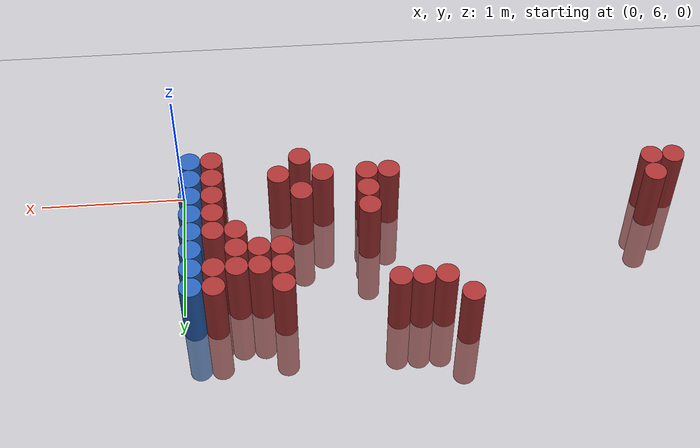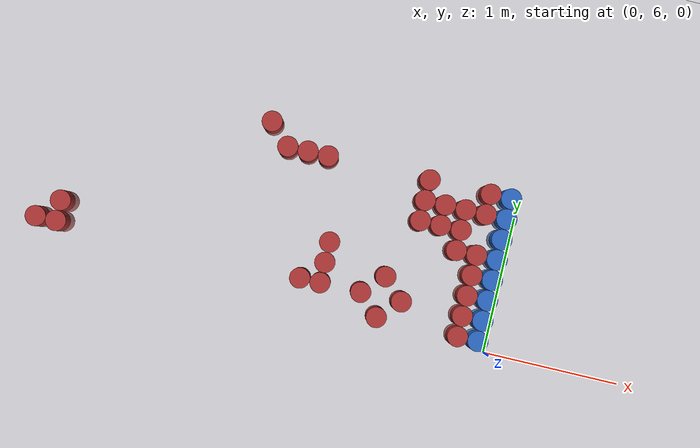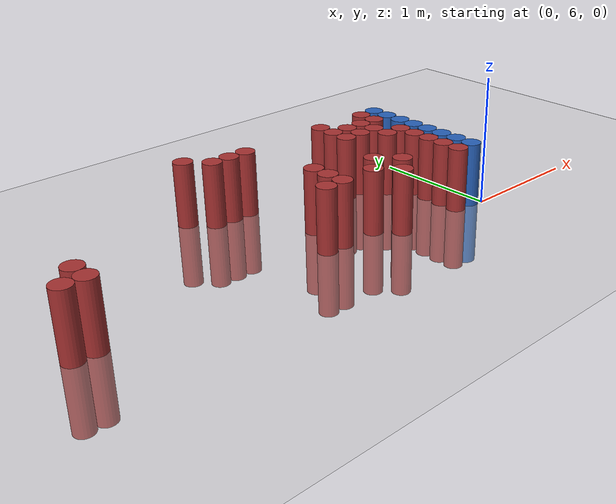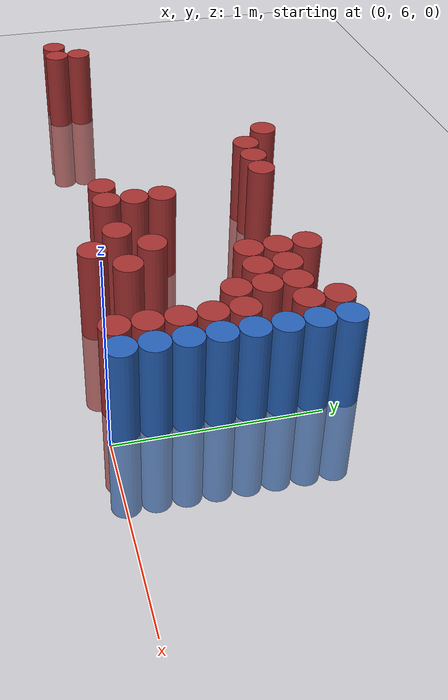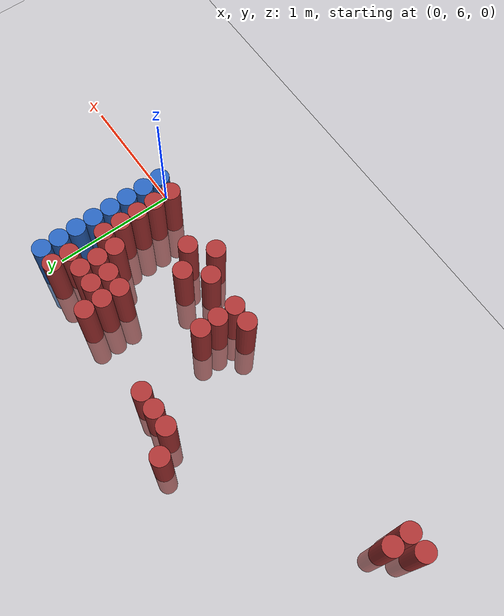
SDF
<sdf version="1.6">
 <world name="default">
  <model name="ground_plane">
   <static>1</static>
   <link name="link">
    <collision name="collision">
     <geometry><plane><normal>0 0 1</normal><size>100 100</size></plane></geometry>
     <surface><friction><ode><mu>100</mu><mu2>50</mu2></ode></friction></surface>
    </collision>
    <visual name="visual">
     <cast_shadows>0</cast_shadows>
     <geometry><plane><normal>0 0 1</normal><size>100 100</size></plane></geometry>
     <material>
      <script><uri>file://media/materials/scripts/gazebo.material</uri><name>Gazebo/Grey</name></script>
     </material>
    </visual>
   </link>
  </model>
  <model name="unit_cylinder_196">
   <static>1</static>
   <pose>-3.375000 6.225000 0.000000 0.000000 0.000000 0.000000</pose>
   <link name="link">
    <inertial>
     <mass>1</mass>
     <inertia><ixx>0.145833</ixx><ixy>0</ixy><ixz>0</ixz><iyy>0.145833</iyy><iyz>0</iyz><izz>0.125</izz></inertia>
    </inertial>
    <collision name="collision">
     <geometry><cylinder><radius>0.075000</radius><length>1</length></cylinder></geometry>
    </collision>
    <visual name="visual">
     <geometry><cylinder><radius>0.075000</radius><length>1</length></cylinder></geometry>
     <material>
      <ambient>0.648000 0.192000 0.192000 1</ambient>
      <diffuse>0.648000 0.192000 0.192000 1</diffuse>
     </material>
     <material>
      <script><name>Gazebo/Grey</name><uri>file://media/materials/scripts/gazebo.material</uri></script>
     </material>
    </visual>
    <sensor name="sensor_contact" type="contact"><contact><collision>collision</collision></contact></sensor>
   </link>
   <plugin filename="gz-sim-touchplugin-system" name="gz::sim::systems::TouchPlugin">
    <target>robot</target>
    <namespace>robot</namespace>
    <time>0.001</time>
    <enabled>true</enabled>
   </plugin>
  </model>
  <model name="unit_cylinder_201">
   <static>1</static>
   <pose>-3.225000 6.225000 0.000000 0.000000 0.000000 0.000000</pose>
   <link name="link">
    <inertial>
     <mass>1</mass>
     <inertia><ixx>0.145833</ixx><ixy>0</ixy><ixz>0</ixz><iyy>0.145833</iyy><iyz>0</iyz><izz>0.125</izz></inertia>
    </inertial>
    <collision name="collision">
     <geometry><cylinder><radius>0.075000</radius><length>1</length></cylinder></geometry>
    </collision>
    <visual name="visual">
     <geometry><cylinder><radius>0.075000</radius><length>1</length></cylinder></geometry>
     <material>
      <ambient>0.648000 0.192000 0.192000 1</ambient>
      <diffuse>0.648000 0.192000 0.192000 1</diffuse>
     </material>
     <material>
      <script><name>Gazebo/Grey</name><uri>file://media/materials/scripts/gazebo.material</uri></script>
     </material>
    </visual>
    <sensor name="sensor_contact" type="contact"><contact><collision>collision</collision></contact></sensor>
   </link>
   <plugin filename="gz-sim-touchplugin-system" name="gz::sim::systems::TouchPlugin">
    <target>robot</target>
    <namespace>robot</namespace>
    <time>0.001</time>
    <enabled>true</enabled>
   </plugin>
  </model>
  <model name="unit_cylinder_202">
   <static>1</static>
   <pose>-3.225000 6.375000 0.000000 0.000000 0.000000 0.000000</pose>
   <link name="link">
    <inertial>
     <mass>1</mass>
     <inertia><ixx>0.145833</ixx><ixy>0</ixy><ixz>0</ixz><iyy>0.145833</iyy><iyz>0</iyz><izz>0.125</izz></inertia>
    </inertial>
    <collision name="collision">
     <geometry><cylinder><radius>0.075000</radius><length>1</length></cylinder></geometry>
    </collision>
    <visual name="visual">
     <geometry><cylinder><radius>0.075000</radius><length>1</length></cylinder></geometry>
     <material>
      <ambient>0.648000 0.192000 0.192000 1</ambient>
      <diffuse>0.648000 0.192000 0.192000 1</diffuse>
     </material>
     <material>
      <script><name>Gazebo/Grey</name><uri>file://media/materials/scripts/gazebo.material</uri></script>
     </material>
    </visual>
    <sensor name="sensor_contact" type="contact"><contact><collision>collision</collision></contact></sensor>
   </link>
   <plugin filename="gz-sim-touchplugin-system" name="gz::sim::systems::TouchPlugin">
    <target>robot</target>
    <namespace>robot</namespace>
    <time>0.001</time>
    <enabled>true</enabled>
   </plugin>
  </model>
  <model name="unit_cylinder_229">
   <static>1</static>
   <pose>-1.875000 7.275000 0.000000 0.000000 0.000000 0.000000</pose>
   <link name="link">
    <inertial>
     <mass>1</mass>
     <inertia><ixx>0.145833</ixx><ixy>0</ixy><ixz>0</ixz><iyy>0.145833</iyy><iyz>0</iyz><izz>0.125</izz></inertia>
    </inertial>
    <collision name="collision">
     <geometry><cylinder><radius>0.075000</radius><length>1</length></cylinder></geometry>
    </collision>
    <visual name="visual">
     <geometry><cylinder><radius>0.075000</radius><length>1</length></cylinder></geometry>
     <material>
      <ambient>0.648000 0.192000 0.192000 1</ambient>
      <diffuse>0.648000 0.192000 0.192000 1</diffuse>
     </material>
     <material>
      <script><name>Gazebo/Grey</name><uri>file://media/materials/scripts/gazebo.material</uri></script>
     </material>
    </visual>
    <sensor name="sensor_contact" type="contact"><contact><collision>collision</collision></contact></sensor>
   </link>
   <plugin filename="gz-sim-touchplugin-system" name="gz::sim::systems::TouchPlugin">
    <target>robot</target>
    <namespace>robot</namespace>
    <time>0.001</time>
    <enabled>true</enabled>
   </plugin>
  </model>
  <model name="unit_cylinder_231">
   <static>1</static>
   <pose>-1.725000 7.125000 0.000000 0.000000 0.000000 0.000000</pose>
   <link name="link">
    <inertial>
     <mass>1</mass>
     <inertia><ixx>0.145833</ixx><ixy>0</ixy><ixz>0</ixz><iyy>0.145833</iyy><iyz>0</iyz><izz>0.125</izz></inertia>
    </inertial>
    <collision name="collision">
     <geometry><cylinder><radius>0.075000</radius><length>1</length></cylinder></geometry>
    </collision>
    <visual name="visual">
     <geometry><cylinder><radius>0.075000</radius><length>1</length></cylinder></geometry>
     <material>
      <ambient>0.648000 0.192000 0.192000 1</ambient>
      <diffuse>0.648000 0.192000 0.192000 1</diffuse>
     </material>
     <material>
      <script><name>Gazebo/Grey</name><uri>file://media/materials/scripts/gazebo.material</uri></script>
     </material>
    </visual>
    <sensor name="sensor_contact" type="contact"><contact><collision>collision</collision></contact></sensor>
   </link>
   <plugin filename="gz-sim-touchplugin-system" name="gz::sim::systems::TouchPlugin">
    <target>robot</target>
    <namespace>robot</namespace>
    <time>0.001</time>
    <enabled>true</enabled>
   </plugin>
  </model>
  <model name="unit_cylinder_236">
   <static>1</static>
   <pose>-1.575000 7.125000 0.000000 0.000000 0.000000 0.000000</pose>
   <link name="link">
    <inertial>
     <mass>1</mass>
     <inertia><ixx>0.145833</ixx><ixy>0</ixy><ixz>0</ixz><iyy>0.145833</iyy><iyz>0</iyz><izz>0.125</izz></inertia>
    </inertial>
    <collision name="collision">
     <geometry><cylinder><radius>0.075000</radius><length>1</length></cylinder></geometry>
    </collision>
    <visual name="visual">
     <geometry><cylinder><radius>0.075000</radius><length>1</length></cylinder></geometry>
     <material>
      <ambient>0.648000 0.192000 0.192000 1</ambient>
      <diffuse>0.648000 0.192000 0.192000 1</diffuse>
     </material>
     <material>
      <script><name>Gazebo/Grey</name><uri>file://media/materials/scripts/gazebo.material</uri></script>
     </material>
    </visual>
    <sensor name="sensor_contact" type="contact"><contact><collision>collision</collision></contact></sensor>
   </link>
   <plugin filename="gz-sim-touchplugin-system" name="gz::sim::systems::TouchPlugin">
    <target>robot</target>
    <namespace>robot</namespace>
    <time>0.001</time>
    <enabled>true</enabled>
   </plugin>
  </model>
  <model name="unit_cylinder_246">
   <static>1</static>
   <pose>-1.425000 6.225000 0.000000 0.000000 0.000000 0.000000</pose>
   <link name="link">
    <inertial>
     <mass>1</mass>
     <inertia><ixx>0.145833</ixx><ixy>0</ixy><ixz>0</ixz><iyy>0.145833</iyy><iyz>0</iyz><izz>0.125</izz></inertia>
    </inertial>
    <collision name="collision">
     <geometry><cylinder><radius>0.075000</radius><length>1</length></cylinder></geometry>
    </collision>
    <visual name="visual">
     <geometry><cylinder><radius>0.075000</radius><length>1</length></cylinder></geometry>
     <material>
      <ambient>0.648000 0.192000 0.192000 1</ambient>
      <diffuse>0.648000 0.192000 0.192000 1</diffuse>
     </material>
     <material>
      <script><name>Gazebo/Grey</name><uri>file://media/materials/scripts/gazebo.material</uri></script>
     </material>
    </visual>
    <sensor name="sensor_contact" type="contact"><contact><collision>collision</collision></contact></sensor>
   </link>
   <plugin filename="gz-sim-touchplugin-system" name="gz::sim::systems::TouchPlugin">
    <target>robot</target>
    <namespace>robot</namespace>
    <time>0.001</time>
    <enabled>true</enabled>
   </plugin>
  </model>
  <model name="unit_cylinder_247">
   <static>1</static>
   <pose>-1.425000 7.125000 0.000000 0.000000 0.000000 0.000000</pose>
   <link name="link">
    <inertial>
     <mass>1</mass>
     <inertia><ixx>0.145833</ixx><ixy>0</ixy><ixz>0</ixz><iyy>0.145833</iyy><iyz>0</iyz><izz>0.125</izz></inertia>
    </inertial>
    <collision name="collision">
     <geometry><cylinder><radius>0.075000</radius><length>1</length></cylinder></geometry>
    </collision>
    <visual name="visual">
     <geometry><cylinder><radius>0.075000</radius><length>1</length></cylinder></geometry>
     <material>
      <ambient>0.648000 0.192000 0.192000 1</ambient>
      <diffuse>0.648000 0.192000 0.192000 1</diffuse>
     </material>
     <material>
      <script><name>Gazebo/Grey</name><uri>file://media/materials/scripts/gazebo.material</uri></script>
     </material>
    </visual>
    <sensor name="sensor_contact" type="contact"><contact><collision>collision</collision></contact></sensor>
   </link>
   <plugin filename="gz-sim-touchplugin-system" name="gz::sim::systems::TouchPlugin">
    <target>robot</target>
    <namespace>robot</namespace>
    <time>0.001</time>
    <enabled>true</enabled>
   </plugin>
  </model>
  <model name="unit_cylinder_259">
   <static>1</static>
   <pose>-1.275000 6.225000 0.000000 0.000000 0.000000 0.000000</pose>
   <link name="link">
    <inertial>
     <mass>1</mass>
     <inertia><ixx>0.145833</ixx><ixy>0</ixy><ixz>0</ixz><iyy>0.145833</iyy><iyz>0</iyz><izz>0.125</izz></inertia>
    </inertial>
    <collision name="collision">
     <geometry><cylinder><radius>0.075000</radius><length>1</length></cylinder></geometry>
    </collision>
    <visual name="visual">
     <geometry><cylinder><radius>0.075000</radius><length>1</length></cylinder></geometry>
     <material>
      <ambient>0.648000 0.192000 0.192000 1</ambient>
      <diffuse>0.648000 0.192000 0.192000 1</diffuse>
     </material>
     <material>
      <script><name>Gazebo/Grey</name><uri>file://media/materials/scripts/gazebo.material</uri></script>
     </material>
    </visual>
    <sensor name="sensor_contact" type="contact"><contact><collision>collision</collision></contact></sensor>
   </link>
   <plugin filename="gz-sim-touchplugin-system" name="gz::sim::systems::TouchPlugin">
    <target>robot</target>
    <namespace>robot</namespace>
    <time>0.001</time>
    <enabled>true</enabled>
   </plugin>
  </model>
  <model name="unit_cylinder_260">
   <static>1</static>
   <pose>-1.275000 6.375000 0.000000 0.000000 0.000000 0.000000</pose>
   <link name="link">
    <inertial>
     <mass>1</mass>
     <inertia><ixx>0.145833</ixx><ixy>0</ixy><ixz>0</ixz><iyy>0.145833</iyy><iyz>0</iyz><izz>0.125</izz></inertia>
    </inertial>
    <collision name="collision">
     <geometry><cylinder><radius>0.075000</radius><length>1</length></cylinder></geometry>
    </collision>
    <visual name="visual">
     <geometry><cylinder><radius>0.075000</radius><length>1</length></cylinder></geometry>
     <material>
      <ambient>0.648000 0.192000 0.192000 1</ambient>
      <diffuse>0.648000 0.192000 0.192000 1</diffuse>
     </material>
     <material>
      <script><name>Gazebo/Grey</name><uri>file://media/materials/scripts/gazebo.material</uri></script>
     </material>
    </visual>
    <sensor name="sensor_contact" type="contact"><contact><collision>collision</collision></contact></sensor>
   </link>
   <plugin filename="gz-sim-touchplugin-system" name="gz::sim::systems::TouchPlugin">
    <target>robot</target>
    <namespace>robot</namespace>
    <time>0.001</time>
    <enabled>true</enabled>
   </plugin>
  </model>
  <model name="unit_cylinder_261">
   <static>1</static>
   <pose>-1.275000 6.525000 0.000000 0.000000 0.000000 0.000000</pose>
   <link name="link">
    <inertial>
     <mass>1</mass>
     <inertia><ixx>0.145833</ixx><ixy>0</ixy><ixz>0</ixz><iyy>0.145833</iyy><iyz>0</iyz><izz>0.125</izz></inertia>
    </inertial>
    <collision name="collision">
     <geometry><cylinder><radius>0.075000</radius><length>1</length></cylinder></geometry>
    </collision>
    <visual name="visual">
     <geometry><cylinder><radius>0.075000</radius><length>1</length></cylinder></geometry>
     <material>
      <ambient>0.648000 0.192000 0.192000 1</ambient>
      <diffuse>0.648000 0.192000 0.192000 1</diffuse>
     </material>
     <material>
      <script><name>Gazebo/Grey</name><uri>file://media/materials/scripts/gazebo.material</uri></script>
     </material>
    </visual>
    <sensor name="sensor_contact" type="contact"><contact><collision>collision</collision></contact></sensor>
   </link>
   <plugin filename="gz-sim-touchplugin-system" name="gz::sim::systems::TouchPlugin">
    <target>robot</target>
    <namespace>robot</namespace>
    <time>0.001</time>
    <enabled>true</enabled>
   </plugin>
  </model>
  <model name="unit_cylinder_276">
   <static>1</static>
   <pose>-0.975000 6.225000 0.000000 0.000000 0.000000 0.000000</pose>
   <link name="link">
    <inertial>
     <mass>1</mass>
     <inertia><ixx>0.145833</ixx><ixy>0</ixy><ixz>0</ixz><iyy>0.145833</iyy><iyz>0</iyz><izz>0.125</izz></inertia>
    </inertial>
    <collision name="collision">
     <geometry><cylinder><radius>0.075000</radius><length>1</length></cylinder></geometry>
    </collision>
    <visual name="visual">
     <geometry><cylinder><radius>0.075000</radius><length>1</length></cylinder></geometry>
     <material>
      <ambient>0.648000 0.192000 0.192000 1</ambient>
      <diffuse>0.648000 0.192000 0.192000 1</diffuse>
     </material>
     <material>
      <script><name>Gazebo/Grey</name><uri>file://media/materials/scripts/gazebo.material</uri></script>
     </material>
    </visual>
    <sensor name="sensor_contact" type="contact"><contact><collision>collision</collision></contact></sensor>
   </link>
   <plugin filename="gz-sim-touchplugin-system" name="gz::sim::systems::TouchPlugin">
    <target>robot</target>
    <namespace>robot</namespace>
    <time>0.001</time>
    <enabled>true</enabled>
   </plugin>
  </model>
  <model name="unit_cylinder_280">
   <static>1</static>
   <pose>-0.825000 6.075000 0.000000 0.000000 0.000000 0.000000</pose>
   <link name="link">
    <inertial>
     <mass>1</mass>
     <inertia><ixx>0.145833</ixx><ixy>0</ixy><ixz>0</ixz><iyy>0.145833</iyy><iyz>0</iyz><izz>0.125</izz></inertia>
    </inertial>
    <collision name="collision">
     <geometry><cylinder><radius>0.075000</radius><length>1</length></cylinder></geometry>
    </collision>
    <visual name="visual">
     <geometry><cylinder><radius>0.075000</radius><length>1</length></cylinder></geometry>
     <material>
      <ambient>0.648000 0.192000 0.192000 1</ambient>
      <diffuse>0.648000 0.192000 0.192000 1</diffuse>
     </material>
     <material>
      <script><name>Gazebo/Grey</name><uri>file://media/materials/scripts/gazebo.material</uri></script>
     </material>
    </visual>
    <sensor name="sensor_contact" type="contact"><contact><collision>collision</collision></contact></sensor>
   </link>
   <plugin filename="gz-sim-touchplugin-system" name="gz::sim::systems::TouchPlugin">
    <target>robot</target>
    <namespace>robot</namespace>
    <time>0.001</time>
    <enabled>true</enabled>
   </plugin>
  </model>
  <model name="unit_cylinder_281">
   <static>1</static>
   <pose>-0.825000 6.375000 0.000000 0.000000 0.000000 0.000000</pose>
   <link name="link">
    <inertial>
     <mass>1</mass>
     <inertia><ixx>0.145833</ixx><ixy>0</ixy><ixz>0</ixz><iyy>0.145833</iyy><iyz>0</iyz><izz>0.125</izz></inertia>
    </inertial>
    <collision name="collision">
     <geometry><cylinder><radius>0.075000</radius><length>1</length></cylinder></geometry>
    </collision>
    <visual name="visual">
     <geometry><cylinder><radius>0.075000</radius><length>1</length></cylinder></geometry>
     <material>
      <ambient>0.648000 0.192000 0.192000 1</ambient>
      <diffuse>0.648000 0.192000 0.192000 1</diffuse>
     </material>
     <material>
      <script><name>Gazebo/Grey</name><uri>file://media/materials/scripts/gazebo.material</uri></script>
     </material>
    </visual>
    <sensor name="sensor_contact" type="contact"><contact><collision>collision</collision></contact></sensor>
   </link>
   <plugin filename="gz-sim-touchplugin-system" name="gz::sim::systems::TouchPlugin">
    <target>robot</target>
    <namespace>robot</namespace>
    <time>0.001</time>
    <enabled>true</enabled>
   </plugin>
  </model>
  <model name="unit_cylinder_283">
   <static>1</static>
   <pose>-0.675000 6.225000 0.000000 0.000000 0.000000 0.000000</pose>
   <link name="link">
    <inertial>
     <mass>1</mass>
     <inertia><ixx>0.145833</ixx><ixy>0</ixy><ixz>0</ixz><iyy>0.145833</iyy><iyz>0</iyz><izz>0.125</izz></inertia>
    </inertial>
    <collision name="collision">
     <geometry><cylinder><radius>0.075000</radius><length>1</length></cylinder></geometry>
    </collision>
    <visual name="visual">
     <geometry><cylinder><radius>0.075000</radius><length>1</length></cylinder></geometry>
     <material>
      <ambient>0.648000 0.192000 0.192000 1</ambient>
      <diffuse>0.648000 0.192000 0.192000 1</diffuse>
     </material>
     <material>
      <script><name>Gazebo/Grey</name><uri>file://media/materials/scripts/gazebo.material</uri></script>
     </material>
    </visual>
    <sensor name="sensor_contact" type="contact"><contact><collision>collision</collision></contact></sensor>
   </link>
   <plugin filename="gz-sim-touchplugin-system" name="gz::sim::systems::TouchPlugin">
    <target>robot</target>
    <namespace>robot</namespace>
    <time>0.001</time>
    <enabled>true</enabled>
   </plugin>
  </model>
  <model name="unit_cylinder_284">
   <static>1</static>
   <pose>-0.675000 6.825000 0.000000 0.000000 0.000000 0.000000</pose>
   <link name="link">
    <inertial>
     <mass>1</mass>
     <inertia><ixx>0.145833</ixx><ixy>0</ixy><ixz>0</ixz><iyy>0.145833</iyy><iyz>0</iyz><izz>0.125</izz></inertia>
    </inertial>
    <collision name="collision">
     <geometry><cylinder><radius>0.075000</radius><length>1</length></cylinder></geometry>
    </collision>
    <visual name="visual">
     <geometry><cylinder><radius>0.075000</radius><length>1</length></cylinder></geometry>
     <material>
      <ambient>0.648000 0.192000 0.192000 1</ambient>
      <diffuse>0.648000 0.192000 0.192000 1</diffuse>
     </material>
     <material>
      <script><name>Gazebo/Grey</name><uri>file://media/materials/scripts/gazebo.material</uri></script>
     </material>
    </visual>
    <sensor name="sensor_contact" type="contact"><contact><collision>collision</collision></contact></sensor>
   </link>
   <plugin filename="gz-sim-touchplugin-system" name="gz::sim::systems::TouchPlugin">
    <target>robot</target>
    <namespace>robot</namespace>
    <time>0.001</time>
    <enabled>true</enabled>
   </plugin>
  </model>
  <model name="unit_cylinder_285">
   <static>1</static>
   <pose>-0.675000 6.975000 0.000000 0.000000 0.000000 0.000000</pose>
   <link name="link">
    <inertial>
     <mass>1</mass>
     <inertia><ixx>0.145833</ixx><ixy>0</ixy><ixz>0</ixz><iyy>0.145833</iyy><iyz>0</iyz><izz>0.125</izz></inertia>
    </inertial>
    <collision name="collision">
     <geometry><cylinder><radius>0.075000</radius><length>1</length></cylinder></geometry>
    </collision>
    <visual name="visual">
     <geometry><cylinder><radius>0.075000</radius><length>1</length></cylinder></geometry>
     <material>
      <ambient>0.648000 0.192000 0.192000 1</ambient>
      <diffuse>0.648000 0.192000 0.192000 1</diffuse>
     </material>
     <material>
      <script><name>Gazebo/Grey</name><uri>file://media/materials/scripts/gazebo.material</uri></script>
     </material>
    </visual>
    <sensor name="sensor_contact" type="contact"><contact><collision>collision</collision></contact></sensor>
   </link>
   <plugin filename="gz-sim-touchplugin-system" name="gz::sim::systems::TouchPlugin">
    <target>robot</target>
    <namespace>robot</namespace>
    <time>0.001</time>
    <enabled>true</enabled>
   </plugin>
  </model>
  <model name="unit_cylinder_286">
   <static>1</static>
   <pose>-0.675000 7.125000 0.000000 0.000000 0.000000 0.000000</pose>
   <link name="link">
    <inertial>
     <mass>1</mass>
     <inertia><ixx>0.145833</ixx><ixy>0</ixy><ixz>0</ixz><iyy>0.145833</iyy><iyz>0</iyz><izz>0.125</izz></inertia>
    </inertial>
    <collision name="collision">
     <geometry><cylinder><radius>0.075000</radius><length>1</length></cylinder></geometry>
    </collision>
    <visual name="visual">
     <geometry><cylinder><radius>0.075000</radius><length>1</length></cylinder></geometry>
     <material>
      <ambient>0.648000 0.192000 0.192000 1</ambient>
      <diffuse>0.648000 0.192000 0.192000 1</diffuse>
     </material>
     <material>
      <script><name>Gazebo/Grey</name><uri>file://media/materials/scripts/gazebo.material</uri></script>
     </material>
    </visual>
    <sensor name="sensor_contact" type="contact"><contact><collision>collision</collision></contact></sensor>
   </link>
   <plugin filename="gz-sim-touchplugin-system" name="gz::sim::systems::TouchPlugin">
    <target>robot</target>
    <namespace>robot</namespace>
    <time>0.001</time>
    <enabled>true</enabled>
   </plugin>
  </model>
  <model name="unit_cylinder_289">
   <static>1</static>
   <pose>-0.525000 6.825000 0.000000 0.000000 0.000000 0.000000</pose>
   <link name="link">
    <inertial>
     <mass>1</mass>
     <inertia><ixx>0.145833</ixx><ixy>0</ixy><ixz>0</ixz><iyy>0.145833</iyy><iyz>0</iyz><izz>0.125</izz></inertia>
    </inertial>
    <collision name="collision">
     <geometry><cylinder><radius>0.075000</radius><length>1</length></cylinder></geometry>
    </collision>
    <visual name="visual">
     <geometry><cylinder><radius>0.075000</radius><length>1</length></cylinder></geometry>
     <material>
      <ambient>0.648000 0.192000 0.192000 1</ambient>
      <diffuse>0.648000 0.192000 0.192000 1</diffuse>
     </material>
     <material>
      <script><name>Gazebo/Grey</name><uri>file://media/materials/scripts/gazebo.material</uri></script>
     </material>
    </visual>
    <sensor name="sensor_contact" type="contact"><contact><collision>collision</collision></contact></sensor>
   </link>
   <plugin filename="gz-sim-touchplugin-system" name="gz::sim::systems::TouchPlugin">
    <target>robot</target>
    <namespace>robot</namespace>
    <time>0.001</time>
    <enabled>true</enabled>
   </plugin>
  </model>
  <model name="unit_cylinder_290">
   <static>1</static>
   <pose>-0.525000 6.975000 0.000000 0.000000 0.000000 0.000000</pose>
   <link name="link">
    <inertial>
     <mass>1</mass>
     <inertia><ixx>0.145833</ixx><ixy>0</ixy><ixz>0</ixz><iyy>0.145833</iyy><iyz>0</iyz><izz>0.125</izz></inertia>
    </inertial>
    <collision name="collision">
     <geometry><cylinder><radius>0.075000</radius><length>1</length></cylinder></geometry>
    </collision>
    <visual name="visual">
     <geometry><cylinder><radius>0.075000</radius><length>1</length></cylinder></geometry>
     <material>
      <ambient>0.648000 0.192000 0.192000 1</ambient>
      <diffuse>0.648000 0.192000 0.192000 1</diffuse>
     </material>
     <material>
      <script><name>Gazebo/Grey</name><uri>file://media/materials/scripts/gazebo.material</uri></script>
     </material>
    </visual>
    <sensor name="sensor_contact" type="contact"><contact><collision>collision</collision></contact></sensor>
   </link>
   <plugin filename="gz-sim-touchplugin-system" name="gz::sim::systems::TouchPlugin">
    <target>robot</target>
    <namespace>robot</namespace>
    <time>0.001</time>
    <enabled>true</enabled>
   </plugin>
  </model>
  <model name="unit_cylinder_292">
   <static>1</static>
   <pose>-0.375000 6.675000 0.000000 0.000000 0.000000 0.000000</pose>
   <link name="link">
    <inertial>
     <mass>1</mass>
     <inertia><ixx>0.145833</ixx><ixy>0</ixy><ixz>0</ixz><iyy>0.145833</iyy><iyz>0</iyz><izz>0.125</izz></inertia>
    </inertial>
    <collision name="collision">
     <geometry><cylinder><radius>0.075000</radius><length>1</length></cylinder></geometry>
    </collision>
    <visual name="visual">
     <geometry><cylinder><radius>0.075000</radius><length>1</length></cylinder></geometry>
     <material>
      <ambient>0.648000 0.192000 0.192000 1</ambient>
      <diffuse>0.648000 0.192000 0.192000 1</diffuse>
     </material>
     <material>
      <script><name>Gazebo/Grey</name><uri>file://media/materials/scripts/gazebo.material</uri></script>
     </material>
    </visual>
    <sensor name="sensor_contact" type="contact"><contact><collision>collision</collision></contact></sensor>
   </link>
   <plugin filename="gz-sim-touchplugin-system" name="gz::sim::systems::TouchPlugin">
    <target>robot</target>
    <namespace>robot</namespace>
    <time>0.001</time>
    <enabled>true</enabled>
   </plugin>
  </model>
  <model name="unit_cylinder_293">
   <static>1</static>
   <pose>-0.375000 6.825000 0.000000 0.000000 0.000000 0.000000</pose>
   <link name="link">
    <inertial>
     <mass>1</mass>
     <inertia><ixx>0.145833</ixx><ixy>0</ixy><ixz>0</ixz><iyy>0.145833</iyy><iyz>0</iyz><izz>0.125</izz></inertia>
    </inertial>
    <collision name="collision">
     <geometry><cylinder><radius>0.075000</radius><length>1</length></cylinder></geometry>
    </collision>
    <visual name="visual">
     <geometry><cylinder><radius>0.075000</radius><length>1</length></cylinder></geometry>
     <material>
      <ambient>0.648000 0.192000 0.192000 1</ambient>
      <diffuse>0.648000 0.192000 0.192000 1</diffuse>
     </material>
     <material>
      <script><name>Gazebo/Grey</name><uri>file://media/materials/scripts/gazebo.material</uri></script>
     </material>
    </visual>
    <sensor name="sensor_contact" type="contact"><contact><collision>collision</collision></contact></sensor>
   </link>
   <plugin filename="gz-sim-touchplugin-system" name="gz::sim::systems::TouchPlugin">
    <target>robot</target>
    <namespace>robot</namespace>
    <time>0.001</time>
    <enabled>true</enabled>
   </plugin>
  </model>
  <model name="unit_cylinder_294">
   <static>1</static>
   <pose>-0.375000 6.975000 0.000000 0.000000 0.000000 0.000000</pose>
   <link name="link">
    <inertial>
     <mass>1</mass>
     <inertia><ixx>0.145833</ixx><ixy>0</ixy><ixz>0</ixz><iyy>0.145833</iyy><iyz>0</iyz><izz>0.125</izz></inertia>
    </inertial>
    <collision name="collision">
     <geometry><cylinder><radius>0.075000</radius><length>1</length></cylinder></geometry>
    </collision>
    <visual name="visual">
     <geometry><cylinder><radius>0.075000</radius><length>1</length></cylinder></geometry>
     <material>
      <ambient>0.648000 0.192000 0.192000 1</ambient>
      <diffuse>0.648000 0.192000 0.192000 1</diffuse>
     </material>
     <material>
      <script><name>Gazebo/Grey</name><uri>file://media/materials/scripts/gazebo.material</uri></script>
     </material>
    </visual>
    <sensor name="sensor_contact" type="contact"><contact><collision>collision</collision></contact></sensor>
   </link>
   <plugin filename="gz-sim-touchplugin-system" name="gz::sim::systems::TouchPlugin">
    <target>robot</target>
    <namespace>robot</namespace>
    <time>0.001</time>
    <enabled>true</enabled>
   </plugin>
  </model>
  <model name="unit_cylinder_301">
   <static>1</static>
   <pose>-0.225000 6.075000 0.000000 0.000000 0.000000 0.000000</pose>
   <link name="link">
    <inertial>
     <mass>1</mass>
     <inertia><ixx>0.145833</ixx><ixy>0</ixy><ixz>0</ixz><iyy>0.145833</iyy><iyz>0</iyz><izz>0.125</izz></inertia>
    </inertial>
    <collision name="collision">
     <geometry><cylinder><radius>0.075000</radius><length>1</length></cylinder></geometry>
    </collision>
    <visual name="visual">
     <geometry><cylinder><radius>0.075000</radius><length>1</length></cylinder></geometry>
     <material>
      <ambient>0.648000 0.192000 0.192000 1</ambient>
      <diffuse>0.648000 0.192000 0.192000 1</diffuse>
     </material>
     <material>
      <script><name>Gazebo/Grey</name><uri>file://media/materials/scripts/gazebo.material</uri></script>
     </material>
    </visual>
    <sensor name="sensor_contact" type="contact"><contact><collision>collision</collision></contact></sensor>
   </link>
   <plugin filename="gz-sim-touchplugin-system" name="gz::sim::systems::TouchPlugin">
    <target>robot</target>
    <namespace>robot</namespace>
    <time>0.001</time>
    <enabled>true</enabled>
   </plugin>
  </model>
  <model name="unit_cylinder_302">
   <static>1</static>
   <pose>-0.225000 6.225000 0.000000 0.000000 0.000000 0.000000</pose>
   <link name="link">
    <inertial>
     <mass>1</mass>
     <inertia><ixx>0.145833</ixx><ixy>0</ixy><ixz>0</ixz><iyy>0.145833</iyy><iyz>0</iyz><izz>0.125</izz></inertia>
    </inertial>
    <collision name="collision">
     <geometry><cylinder><radius>0.075000</radius><length>1</length></cylinder></geometry>
    </collision>
    <visual name="visual">
     <geometry><cylinder><radius>0.075000</radius><length>1</length></cylinder></geometry>
     <material>
      <ambient>0.648000 0.192000 0.192000 1</ambient>
      <diffuse>0.648000 0.192000 0.192000 1</diffuse>
     </material>
     <material>
      <script><name>Gazebo/Grey</name><uri>file://media/materials/scripts/gazebo.material</uri></script>
     </material>
    </visual>
    <sensor name="sensor_contact" type="contact"><contact><collision>collision</collision></contact></sensor>
   </link>
   <plugin filename="gz-sim-touchplugin-system" name="gz::sim::systems::TouchPlugin">
    <target>robot</target>
    <namespace>robot</namespace>
    <time>0.001</time>
    <enabled>true</enabled>
   </plugin>
  </model>
  <model name="unit_cylinder_303">
   <static>1</static>
   <pose>-0.225000 6.375000 0.000000 0.000000 0.000000 0.000000</pose>
   <link name="link">
    <inertial>
     <mass>1</mass>
     <inertia><ixx>0.145833</ixx><ixy>0</ixy><ixz>0</ixz><iyy>0.145833</iyy><iyz>0</iyz><izz>0.125</izz></inertia>
    </inertial>
    <collision name="collision">
     <geometry><cylinder><radius>0.075000</radius><length>1</length></cylinder></geometry>
    </collision>
    <visual name="visual">
     <geometry><cylinder><radius>0.075000</radius><length>1</length></cylinder></geometry>
     <material>
      <ambient>0.648000 0.192000 0.192000 1</ambient>
      <diffuse>0.648000 0.192000 0.192000 1</diffuse>
     </material>
     <material>
      <script><name>Gazebo/Grey</name><uri>file://media/materials/scripts/gazebo.material</uri></script>
     </material>
    </visual>
    <sensor name="sensor_contact" type="contact"><contact><collision>collision</collision></contact></sensor>
   </link>
   <plugin filename="gz-sim-touchplugin-system" name="gz::sim::systems::TouchPlugin">
    <target>robot</target>
    <namespace>robot</namespace>
    <time>0.001</time>
    <enabled>true</enabled>
   </plugin>
  </model>
  <model name="unit_cylinder_304">
   <static>1</static>
   <pose>-0.225000 6.525000 0.000000 0.000000 0.000000 0.000000</pose>
   <link name="link">
    <inertial>
     <mass>1</mass>
     <inertia><ixx>0.145833</ixx><ixy>0</ixy><ixz>0</ixz><iyy>0.145833</iyy><iyz>0</iyz><izz>0.125</izz></inertia>
    </inertial>
    <collision name="collision">
     <geometry><cylinder><radius>0.075000</radius><length>1</length></cylinder></geometry>
    </collision>
    <visual name="visual">
     <geometry><cylinder><radius>0.075000</radius><length>1</length></cylinder></geometry>
     <material>
      <ambient>0.648000 0.192000 0.192000 1</ambient>
      <diffuse>0.648000 0.192000 0.192000 1</diffuse>
     </material>
     <material>
      <script><name>Gazebo/Grey</name><uri>file://media/materials/scripts/gazebo.material</uri></script>
     </material>
    </visual>
    <sensor name="sensor_contact" type="contact"><contact><collision>collision</collision></contact></sensor>
   </link>
   <plugin filename="gz-sim-touchplugin-system" name="gz::sim::systems::TouchPlugin">
    <target>robot</target>
    <namespace>robot</namespace>
    <time>0.001</time>
    <enabled>true</enabled>
   </plugin>
  </model>
  <model name="unit_cylinder_305">
   <static>1</static>
   <pose>-0.225000 6.675000 0.000000 0.000000 0.000000 0.000000</pose>
   <link name="link">
    <inertial>
     <mass>1</mass>
     <inertia><ixx>0.145833</ixx><ixy>0</ixy><ixz>0</ixz><iyy>0.145833</iyy><iyz>0</iyz><izz>0.125</izz></inertia>
    </inertial>
    <collision name="collision">
     <geometry><cylinder><radius>0.075000</radius><length>1</length></cylinder></geometry>
    </collision>
    <visual name="visual">
     <geometry><cylinder><radius>0.075000</radius><length>1</length></cylinder></geometry>
     <material>
      <ambient>0.648000 0.192000 0.192000 1</ambient>
      <diffuse>0.648000 0.192000 0.192000 1</diffuse>
     </material>
     <material>
      <script><name>Gazebo/Grey</name><uri>file://media/materials/scripts/gazebo.material</uri></script>
     </material>
    </visual>
    <sensor name="sensor_contact" type="contact"><contact><collision>collision</collision></contact></sensor>
   </link>
   <plugin filename="gz-sim-touchplugin-system" name="gz::sim::systems::TouchPlugin">
    <target>robot</target>
    <namespace>robot</namespace>
    <time>0.001</time>
    <enabled>true</enabled>
   </plugin>
  </model>
  <model name="unit_cylinder_306">
   <static>1</static>
   <pose>-0.225000 6.975000 0.000000 0.000000 0.000000 0.000000</pose>
   <link name="link">
    <inertial>
     <mass>1</mass>
     <inertia><ixx>0.145833</ixx><ixy>0</ixy><ixz>0</ixz><iyy>0.145833</iyy><iyz>0</iyz><izz>0.125</izz></inertia>
    </inertial>
    <collision name="collision">
     <geometry><cylinder><radius>0.075000</radius><length>1</length></cylinder></geometry>
    </collision>
    <visual name="visual">
     <geometry><cylinder><radius>0.075000</radius><length>1</length></cylinder></geometry>
     <material>
      <ambient>0.648000 0.192000 0.192000 1</ambient>
      <diffuse>0.648000 0.192000 0.192000 1</diffuse>
     </material>
     <material>
      <script><name>Gazebo/Grey</name><uri>file://media/materials/scripts/gazebo.material</uri></script>
     </material>
    </visual>
    <sensor name="sensor_contact" type="contact"><contact><collision>collision</collision></contact></sensor>
   </link>
   <plugin filename="gz-sim-touchplugin-system" name="gz::sim::systems::TouchPlugin">
    <target>robot</target>
    <namespace>robot</namespace>
    <time>0.001</time>
    <enabled>true</enabled>
   </plugin>
  </model>
  <model name="unit_cylinder_307">
   <static>1</static>
   <pose>-0.225000 7.125000 0.000000 0.000000 0.000000 0.000000</pose>
   <link name="link">
    <inertial>
     <mass>1</mass>
     <inertia><ixx>0.145833</ixx><ixy>0</ixy><ixz>0</ixz><iyy>0.145833</iyy><iyz>0</iyz><izz>0.125</izz></inertia>
    </inertial>
    <collision name="collision">
     <geometry><cylinder><radius>0.075000</radius><length>1</length></cylinder></geometry>
    </collision>
    <visual name="visual">
     <geometry><cylinder><radius>0.075000</radius><length>1</length></cylinder></geometry>
     <material>
      <ambient>0.648000 0.192000 0.192000 1</ambient>
      <diffuse>0.648000 0.192000 0.192000 1</diffuse>
     </material>
     <material>
      <script><name>Gazebo/Grey</name><uri>file://media/materials/scripts/gazebo.material</uri></script>
     </material>
    </visual>
    <sensor name="sensor_contact" type="contact"><contact><collision>collision</collision></contact></sensor>
   </link>
   <plugin filename="gz-sim-touchplugin-system" name="gz::sim::systems::TouchPlugin">
    <target>robot</target>
    <namespace>robot</namespace>
    <time>0.001</time>
    <enabled>true</enabled>
   </plugin>
  </model>
  <model name="unit_cylinder_322">
   <static>1</static>
   <pose>-0.075000 6.075000 0.000000 0.000000 0.000000 0.000000</pose>
   <link name="link">
    <inertial>
     <mass>1</mass>
     <inertia><ixx>0.145833</ixx><ixy>0</ixy><ixz>0</ixz><iyy>0.145833</iyy><iyz>0</iyz><izz>0.125</izz></inertia>
    </inertial>
    <collision name="collision">
     <geometry><cylinder><radius>0.075000</radius><length>1</length></cylinder></geometry>
    </collision>
    <visual name="visual">
     <geometry><cylinder><radius>0.075000</radius><length>1</length></cylinder></geometry>
     <material>
      <ambient>0.152000 0.379000 0.720000 1</ambient>
      <diffuse>0.152000 0.379000 0.720000 1</diffuse>
     </material>
     <material>
      <script><name>Gazebo/Grey</name><uri>file://media/materials/scripts/gazebo.material</uri></script>
     </material>
    </visual>
    <sensor name="sensor_contact" type="contact"><contact><collision>collision</collision></contact></sensor>
   </link>
   <plugin filename="gz-sim-touchplugin-system" name="gz::sim::systems::TouchPlugin">
    <target>robot</target>
    <namespace>robot</namespace>
    <time>0.001</time>
    <enabled>true</enabled>
   </plugin>
  </model>
  <model name="unit_cylinder_323">
   <static>1</static>
   <pose>-0.075000 6.225000 0.000000 0.000000 0.000000 0.000000</pose>
   <link name="link">
    <inertial>
     <mass>1</mass>
     <inertia><ixx>0.145833</ixx><ixy>0</ixy><ixz>0</ixz><iyy>0.145833</iyy><iyz>0</iyz><izz>0.125</izz></inertia>
    </inertial>
    <collision name="collision">
     <geometry><cylinder><radius>0.075000</radius><length>1</length></cylinder></geometry>
    </collision>
    <visual name="visual">
     <geometry><cylinder><radius>0.075000</radius><length>1</length></cylinder></geometry>
     <material>
      <ambient>0.152000 0.379000 0.720000 1</ambient>
      <diffuse>0.152000 0.379000 0.720000 1</diffuse>
     </material>
     <material>
      <script><name>Gazebo/Grey</name><uri>file://media/materials/scripts/gazebo.material</uri></script>
     </material>
    </visual>
    <sensor name="sensor_contact" type="contact"><contact><collision>collision</collision></contact></sensor>
   </link>
   <plugin filename="gz-sim-touchplugin-system" name="gz::sim::systems::TouchPlugin">
    <target>robot</target>
    <namespace>robot</namespace>
    <time>0.001</time>
    <enabled>true</enabled>
   </plugin>
  </model>
  <model name="unit_cylinder_324">
   <static>1</static>
   <pose>-0.075000 6.375000 0.000000 0.000000 0.000000 0.000000</pose>
   <link name="link">
    <inertial>
     <mass>1</mass>
     <inertia><ixx>0.145833</ixx><ixy>0</ixy><ixz>0</ixz><iyy>0.145833</iyy><iyz>0</iyz><izz>0.125</izz></inertia>
    </inertial>
    <collision name="collision">
     <geometry><cylinder><radius>0.075000</radius><length>1</length></cylinder></geometry>
    </collision>
    <visual name="visual">
     <geometry><cylinder><radius>0.075000</radius><length>1</length></cylinder></geometry>
     <material>
      <ambient>0.152000 0.379000 0.720000 1</ambient>
      <diffuse>0.152000 0.379000 0.720000 1</diffuse>
     </material>
     <material>
      <script><name>Gazebo/Grey</name><uri>file://media/materials/scripts/gazebo.material</uri></script>
     </material>
    </visual>
    <sensor name="sensor_contact" type="contact"><contact><collision>collision</collision></contact></sensor>
   </link>
   <plugin filename="gz-sim-touchplugin-system" name="gz::sim::systems::TouchPlugin">
    <target>robot</target>
    <namespace>robot</namespace>
    <time>0.001</time>
    <enabled>true</enabled>
   </plugin>
  </model>
  <model name="unit_cylinder_325">
   <static>1</static>
   <pose>-0.075000 6.525000 0.000000 0.000000 0.000000 0.000000</pose>
   <link name="link">
    <inertial>
     <mass>1</mass>
     <inertia><ixx>0.145833</ixx><ixy>0</ixy><ixz>0</ixz><iyy>0.145833</iyy><iyz>0</iyz><izz>0.125</izz></inertia>
    </inertial>
    <collision name="collision">
     <geometry><cylinder><radius>0.075000</radius><length>1</length></cylinder></geometry>
    </collision>
    <visual name="visual">
     <geometry><cylinder><radius>0.075000</radius><length>1</length></cylinder></geometry>
     <material>
      <ambient>0.152000 0.379000 0.720000 1</ambient>
      <diffuse>0.152000 0.379000 0.720000 1</diffuse>
     </material>
     <material>
      <script><name>Gazebo/Grey</name><uri>file://media/materials/scripts/gazebo.material</uri></script>
     </material>
    </visual>
    <sensor name="sensor_contact" type="contact"><contact><collision>collision</collision></contact></sensor>
   </link>
   <plugin filename="gz-sim-touchplugin-system" name="gz::sim::systems::TouchPlugin">
    <target>robot</target>
    <namespace>robot</namespace>
    <time>0.001</time>
    <enabled>true</enabled>
   </plugin>
  </model>
  <model name="unit_cylinder_326">
   <static>1</static>
   <pose>-0.075000 6.675000 0.000000 0.000000 0.000000 0.000000</pose>
   <link name="link">
    <inertial>
     <mass>1</mass>
     <inertia><ixx>0.145833</ixx><ixy>0</ixy><ixz>0</ixz><iyy>0.145833</iyy><iyz>0</iyz><izz>0.125</izz></inertia>
    </inertial>
    <collision name="collision">
     <geometry><cylinder><radius>0.075000</radius><length>1</length></cylinder></geometry>
    </collision>
    <visual name="visual">
     <geometry><cylinder><radius>0.075000</radius><length>1</length></cylinder></geometry>
     <material>
      <ambient>0.152000 0.379000 0.720000 1</ambient>
      <diffuse>0.152000 0.379000 0.720000 1</diffuse>
     </material>
     <material>
      <script><name>Gazebo/Grey</name><uri>file://media/materials/scripts/gazebo.material</uri></script>
     </material>
    </visual>
    <sensor name="sensor_contact" type="contact"><contact><collision>collision</collision></contact></sensor>
   </link>
   <plugin filename="gz-sim-touchplugin-system" name="gz::sim::systems::TouchPlugin">
    <target>robot</target>
    <namespace>robot</namespace>
    <time>0.001</time>
    <enabled>true</enabled>
   </plugin>
  </model>
  <model name="unit_cylinder_327">
   <static>1</static>
   <pose>-0.075000 6.825000 0.000000 0.000000 0.000000 0.000000</pose>
   <link name="link">
    <inertial>
     <mass>1</mass>
     <inertia><ixx>0.145833</ixx><ixy>0</ixy><ixz>0</ixz><iyy>0.145833</iyy><iyz>0</iyz><izz>0.125</izz></inertia>
    </inertial>
    <collision name="collision">
     <geometry><cylinder><radius>0.075000</radius><length>1</length></cylinder></geometry>
    </collision>
    <visual name="visual">
     <geometry><cylinder><radius>0.075000</radius><length>1</length></cylinder></geometry>
     <material>
      <ambient>0.152000 0.379000 0.720000 1</ambient>
      <diffuse>0.152000 0.379000 0.720000 1</diffuse>
     </material>
     <material>
      <script><name>Gazebo/Grey</name><uri>file://media/materials/scripts/gazebo.material</uri></script>
     </material>
    </visual>
    <sensor name="sensor_contact" type="contact"><contact><collision>collision</collision></contact></sensor>
   </link>
   <plugin filename="gz-sim-touchplugin-system" name="gz::sim::systems::TouchPlugin">
    <target>robot</target>
    <namespace>robot</namespace>
    <time>0.001</time>
    <enabled>true</enabled>
   </plugin>
  </model>
  <model name="unit_cylinder_328">
   <static>1</static>
   <pose>-0.075000 6.975000 0.000000 0.000000 0.000000 0.000000</pose>
   <link name="link">
    <inertial>
     <mass>1</mass>
     <inertia><ixx>0.145833</ixx><ixy>0</ixy><ixz>0</ixz><iyy>0.145833</iyy><iyz>0</iyz><izz>0.125</izz></inertia>
    </inertial>
    <collision name="collision">
     <geometry><cylinder><radius>0.075000</radius><length>1</length></cylinder></geometry>
    </collision>
    <visual name="visual">
     <geometry><cylinder><radius>0.075000</radius><length>1</length></cylinder></geometry>
     <material>
      <ambient>0.152000 0.379000 0.720000 1</ambient>
      <diffuse>0.152000 0.379000 0.720000 1</diffuse>
     </material>
     <material>
      <script><name>Gazebo/Grey</name><uri>file://media/materials/scripts/gazebo.material</uri></script>
     </material>
    </visual>
    <sensor name="sensor_contact" type="contact"><contact><collision>collision</collision></contact></sensor>
   </link>
   <plugin filename="gz-sim-touchplugin-system" name="gz::sim::systems::TouchPlugin">
    <target>robot</target>
    <namespace>robot</namespace>
    <time>0.001</time>
    <enabled>true</enabled>
   </plugin>
  </model>
  <model name="unit_cylinder_329">
   <static>1</static>
   <pose>-0.075000 7.125000 0.000000 0.000000 0.000000 0.000000</pose>
   <link name="link">
    <inertial>
     <mass>1</mass>
     <inertia><ixx>0.145833</ixx><ixy>0</ixy><ixz>0</ixz><iyy>0.145833</iyy><iyz>0</iyz><izz>0.125</izz></inertia>
    </inertial>
    <collision name="collision">
     <geometry><cylinder><radius>0.075000</radius><length>1</length></cylinder></geometry>
    </collision>
    <visual name="visual">
     <geometry><cylinder><radius>0.075000</radius><length>1</length></cylinder></geometry>
     <material>
      <ambient>0.152000 0.379000 0.720000 1</ambient>
      <diffuse>0.152000 0.379000 0.720000 1</diffuse>
     </material>
     <material>
      <script><name>Gazebo/Grey</name><uri>file://media/materials/scripts/gazebo.material</uri></script>
     </material>
    </visual>
    <sensor name="sensor_contact" type="contact"><contact><collision>collision</collision></contact></sensor>
   </link>
   <plugin filename="gz-sim-touchplugin-system" name="gz::sim::systems::TouchPlugin">
    <target>robot</target>
    <namespace>robot</namespace>
    <time>0.001</time>
    <enabled>true</enabled>
   </plugin>
  </model>
 </world>
</sdf>
